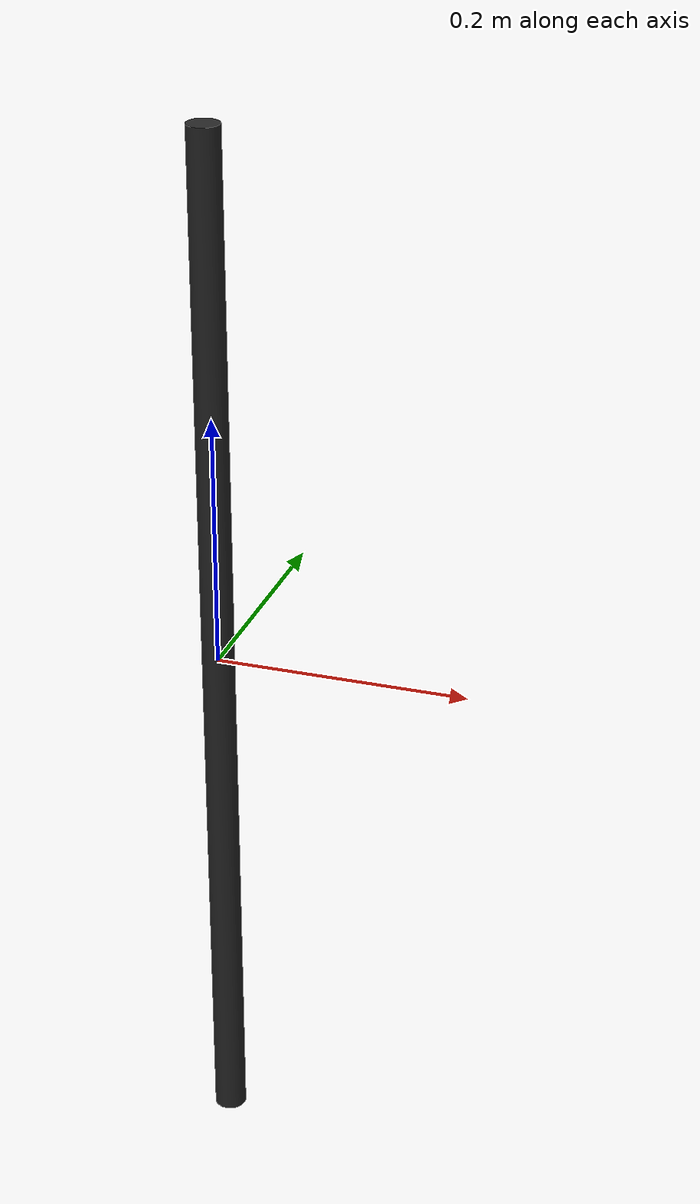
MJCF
<mujoco model="axle">
  <default>
    <default class="visual">
      <geom group="2" type="mesh" contype="0" conaffinity="0"/>
    </default>
    <default class="collision">
      <geom group="3" type="mesh"/>
    </default>
  </default>
  <asset>
    <material name="mtl_axle" specular="0.20000000000000004" shininess="1.0" rgba="0.14901961 0.14901961 0.14901961 1.0"/>
    <mesh file="axle.obj"/>
  </asset>
  <worldbody>
    <body name="axle">
      <geom material="mtl_axle" mesh="axle" class="visual"/>
      <geom mesh="axle" class="collision"/>
    </body>
  </worldbody>
</mujoco>
